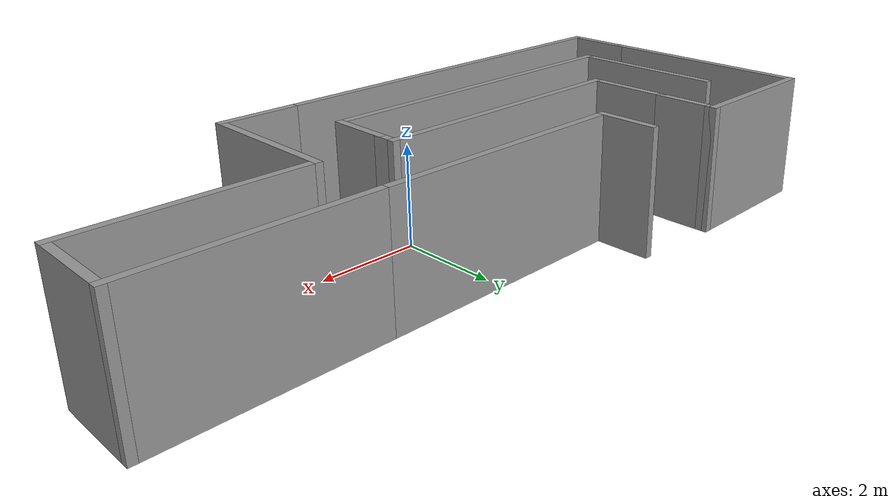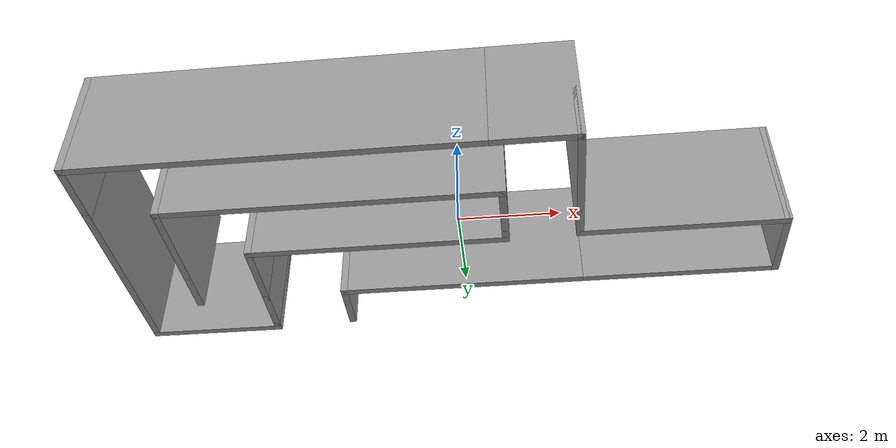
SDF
<?xml version='1.0'?>
<sdf version='1.7'>
  <model name='maze'>
    <pose>-0.39 0.71 0 0 -0 0</pose>
    <link name='Wall_10'>
      <collision name='Wall_10_Collision'>
        <geometry>
          <box>
            <size>5.5 0.15 2.5</size>
          </box>
        </geometry>
        <pose>0 0 1.25 0 -0 0</pose>
      </collision>
      <visual name='Wall_10_Visual'>
        <pose>0 0 1.25 0 -0 0</pose>
        <geometry>
          <box>
            <size>5.5 0.15 2.5</size>
          </box>
        </geometry>
        <material>
          <script>
            <uri>file://media/materials/scripts/gazebo.material</uri>
            <name>Gazebo/Grey</name>
          </script>
          <ambient>1 1 1 1</ambient>
        </material>
        <meta>
          <layer>0</layer>
        </meta>
      </visual>
      <pose>-1.375 0.05 0 0 -0 3.14159</pose>
    </link>
    <link name='Wall_11'>
      <collision name='Wall_11_Collision'>
        <geometry>
          <box>
            <size>1.75 0.15 2.5</size>
          </box>
        </geometry>
        <pose>0 0 1.25 0 -0 0</pose>
      </collision>
      <visual name='Wall_11_Visual'>
        <pose>0 0 1.25 0 -0 0</pose>
        <geometry>
          <box>
            <size>1.75 0.15 2.5</size>
          </box>
        </geometry>
        <material>
          <script>
            <uri>file://media/materials/scripts/gazebo.material</uri>
            <name>Gazebo/Grey</name>
          </script>
          <ambient>1 1 1 1</ambient>
        </material>
        <meta>
          <layer>0</layer>
        </meta>
      </visual>
      <pose>-4.05 0.85 0 0 -0 1.5708</pose>
    </link>
    <link name='Wall_13'>
      <collision name='Wall_13_Collision'>
        <geometry>
          <box>
            <size>7 0.15 2.5</size>
          </box>
        </geometry>
        <pose>0 0 1.25 0 -0 0</pose>
      </collision>
      <visual name='Wall_13_Visual'>
        <pose>0 0 1.25 0 -0 0</pose>
        <geometry>
          <box>
            <size>7 0.15 2.5</size>
          </box>
        </geometry>
        <material>
          <script>
            <uri>file://media/materials/scripts/gazebo.material</uri>
            <name>Gazebo/Grey</name>
          </script>
          <ambient>1 1 1 1</ambient>
        </material>
        <meta>
          <layer>0</layer>
        </meta>
      </visual>
      <pose>-2.125 -1.4 0 0 -0 3.14159</pose>
    </link>
    <link name='Wall_14'>
      <collision name='Wall_14_Collision'>
        <geometry>
          <box>
            <size>3.25 0.15 2.5</size>
          </box>
        </geometry>
        <pose>0 0 1.25 0 -0 0</pose>
      </collision>
      <visual name='Wall_14_Visual'>
        <pose>0 0 1.25 0 -0 0</pose>
        <geometry>
          <box>
            <size>3.25 0.15 2.5</size>
          </box>
        </geometry>
        <material>
          <script>
            <uri>file://media/materials/scripts/gazebo.material</uri>
            <name>Gazebo/Grey</name>
          </script>
          <ambient>1 1 1 1</ambient>
        </material>
        <meta>
          <layer>0</layer>
        </meta>
      </visual>
      <pose>-5.55 0.15 0 0 -0 1.5708</pose>
    </link>
    <link name='Wall_17'>
      <collision name='Wall_17_Collision'>
        <geometry>
          <box>
            <size>1.25 0.15 2.5</size>
          </box>
        </geometry>
        <pose>0 0 1.25 0 -0 0</pose>
      </collision>
      <visual name='Wall_17_Visual'>
        <pose>0 0 1.25 0 -0 0</pose>
        <geometry>
          <box>
            <size>1.25 0.15 2.5</size>
          </box>
        </geometry>
        <material>
          <script>
            <uri>file://media/materials/scripts/gazebo.material</uri>
            <name>Gazebo/Grey</name>
          </script>
          <ambient>1 1 1 1</ambient>
        </material>
        <meta>
          <layer>0</layer>
        </meta>
      </visual>
      <pose>-4.05 2.2 0 0 -0 1.5708</pose>
    </link>
    <link name='Wall_21'>
      <collision name='Wall_21_Collision'>
        <geometry>
          <box>
            <size>0.25 0.15 2.5</size>
          </box>
        </geometry>
        <pose>0 0 1.25 0 -0 0</pose>
      </collision>
      <visual name='Wall_21_Visual'>
        <pose>0 0 1.25 0 -0 0</pose>
        <geometry>
          <box>
            <size>0.25 0.15 2.5</size>
          </box>
        </geometry>
        <material>
          <script>
            <uri>file://media/materials/scripts/gazebo.material</uri>
            <name>Gazebo/Grey</name>
          </script>
          <ambient>1 1 1 1</ambient>
        </material>
        <meta>
          <layer>0</layer>
        </meta>
      </visual>
      <pose>-4.05 2.8 0 0 -0 1.5708</pose>
    </link>
    <link name='Wall_22'>
      <collision name='Wall_22_Collision'>
        <geometry>
          <box>
            <size>3 0.15 2.5</size>
          </box>
        </geometry>
        <pose>0 0 1.25 0 -0 0</pose>
      </collision>
      <visual name='Wall_22_Visual'>
        <pose>0 0 1.25 0 -0 0</pose>
        <geometry>
          <box>
            <size>3 0.15 2.5</size>
          </box>
        </geometry>
        <material>
          <script>
            <uri>file://media/materials/scripts/gazebo.material</uri>
            <name>Gazebo/Grey</name>
          </script>
          <ambient>1 1 1 1</ambient>
        </material>
        <meta>
          <layer>0</layer>
        </meta>
      </visual>
      <pose>-5.475 2.85 0 0 -0 3.14159</pose>
    </link>
    <link name='Wall_23'>
      <collision name='Wall_23_Collision'>
        <geometry>
          <box>
            <size>4.5 0.15 2.5</size>
          </box>
        </geometry>
        <pose>0 0 1.25 0 -0 0</pose>
      </collision>
      <visual name='Wall_23_Visual'>
        <pose>0 0 1.25 0 -0 0</pose>
        <geometry>
          <box>
            <size>4.5 0.15 2.5</size>
          </box>
        </geometry>
        <material>
          <script>
            <uri>file://media/materials/scripts/gazebo.material</uri>
            <name>Gazebo/Grey</name>
          </script>
          <ambient>1 1 1 1</ambient>
        </material>
        <meta>
          <layer>0</layer>
        </meta>
      </visual>
      <pose>-6.9 0.675 0 0 -0 -1.5708</pose>
    </link>
    <link name='Wall_25'>
      <collision name='Wall_25_Collision'>
        <geometry>
          <box>
            <size>1.5 0.15 2.5</size>
          </box>
        </geometry>
        <pose>0 0 1.25 0 -0 0</pose>
      </collision>
      <visual name='Wall_25_Visual'>
        <pose>0 0 1.25 0 -0 0</pose>
        <geometry>
          <box>
            <size>1.5 0.15 2.5</size>
          </box>
        </geometry>
        <material>
          <script>
            <uri>file://media/materials/scripts/gazebo.material</uri>
            <name>Gazebo/Grey</name>
          </script>
          <ambient>1 1 1 1</ambient>
        </material>
        <meta>
          <layer>0</layer>
        </meta>
      </visual>
      <pose>-6.9 -2.175 0 0 -0 -1.5708</pose>
    </link>
    <link name='Wall_26'>
      <collision name='Wall_26_Collision'>
        <geometry>
          <box>
            <size>8.25 0.15 2.5</size>
          </box>
        </geometry>
        <pose>0 0 1.25 0 -0 0</pose>
      </collision>
      <visual name='Wall_26_Visual'>
        <pose>0 0 1.25 0 -0 0</pose>
        <geometry>
          <box>
            <size>8.25 0.15 2.5</size>
          </box>
        </geometry>
        <material>
          <script>
            <uri>file://media/materials/scripts/gazebo.material</uri>
            <name>Gazebo/Grey</name>
          </script>
          <ambient>1 1 1 1</ambient>
        </material>
        <meta>
          <layer>0</layer>
        </meta>
      </visual>
      <pose>-2.85 -2.85 0 0 -0 0</pose>
    </link>
    <link name='Wall_27'>
      <collision name='Wall_27_Collision'>
        <geometry>
          <box>
            <size>1.75 0.15 2.5</size>
          </box>
        </geometry>
        <pose>0 0 1.25 0 -0 0</pose>
      </collision>
      <visual name='Wall_27_Visual'>
        <pose>0 0 1.25 0 -0 0</pose>
        <geometry>
          <box>
            <size>1.75 0.15 2.5</size>
          </box>
        </geometry>
        <material>
          <script>
            <uri>file://media/materials/scripts/gazebo.material</uri>
            <name>Gazebo/Grey</name>
          </script>
          <ambient>1 1 1 1</ambient>
        </material>
        <meta>
          <layer>0</layer>
        </meta>
      </visual>
      <pose>2 -2.85 0 0 -0 0</pose>
    </link>
    <link name='Wall_28'>
      <collision name='Wall_28_Collision'>
        <geometry>
          <box>
            <size>3 0.15 2.5</size>
          </box>
        </geometry>
        <pose>0 0 1.25 0 -0 0</pose>
      </collision>
      <visual name='Wall_28_Visual'>
        <pose>0 0 1.25 0 -0 0</pose>
        <geometry>
          <box>
            <size>3 0.15 2.5</size>
          </box>
        </geometry>
        <material>
          <script>
            <uri>file://media/materials/scripts/gazebo.material</uri>
            <name>Gazebo/Grey</name>
          </script>
          <ambient>1 1 1 1</ambient>
        </material>
        <meta>
          <layer>0</layer>
        </meta>
      </visual>
      <pose>2.8 -1.425 0 0 -0 1.5708</pose>
    </link>
    <link name='Wall_30'>
      <collision name='Wall_30_Collision'>
        <geometry>
          <box>
            <size>4.25 0.15 2.5</size>
          </box>
        </geometry>
        <pose>0 0 1.25 0 -0 0</pose>
      </collision>
      <visual name='Wall_30_Visual'>
        <pose>0 0 1.25 0 -0 0</pose>
        <geometry>
          <box>
            <size>4.25 0.15 2.5</size>
          </box>
        </geometry>
        <material>
          <script>
            <uri>file://media/materials/scripts/gazebo.material</uri>
            <name>Gazebo/Grey</name>
          </script>
          <ambient>1 1 1 1</ambient>
        </material>
        <meta>
          <layer>0</layer>
        </meta>
      </visual>
      <pose>4.85 -0 0 0 -0 0</pose>
    </link>
    <link name='Wall_31'>
      <collision name='Wall_31_Collision'>
        <geometry>
          <box>
            <size>1.75 0.15 2.5</size>
          </box>
        </geometry>
        <pose>0 0 1.25 0 -0 0</pose>
      </collision>
      <visual name='Wall_31_Visual'>
        <pose>0 0 1.25 0 -0 0</pose>
        <geometry>
          <box>
            <size>1.75 0.15 2.5</size>
          </box>
        </geometry>
        <material>
          <script>
            <uri>file://media/materials/scripts/gazebo.material</uri>
            <name>Gazebo/Grey</name>
          </script>
          <ambient>1 1 1 1</ambient>
        </material>
        <meta>
          <layer>0</layer>
        </meta>
      </visual>
      <pose>6.9 0.8 0 0 -0 1.5708</pose>
    </link>
    <link name='Wall_32'>
      <collision name='Wall_32_Collision'>
        <geometry>
          <box>
            <size>4.25 0.15 2.5</size>
          </box>
        </geometry>
        <pose>0 0 1.25 0 -0 0</pose>
      </collision>
      <visual name='Wall_32_Visual'>
        <pose>0 0 1.25 0 -0 0</pose>
        <geometry>
          <box>
            <size>4.25 0.15 2.5</size>
          </box>
        </geometry>
        <material>
          <script>
            <uri>file://media/materials/scripts/gazebo.material</uri>
            <name>Gazebo/Grey</name>
          </script>
          <ambient>1 1 1 1</ambient>
        </material>
        <meta>
          <layer>0</layer>
        </meta>
      </visual>
      <pose>4.85 1.6 0 0 -0 3.14159</pose>
    </link>
    <link name='Wall_33'>
      <collision name='Wall_33_Collision'>
        <geometry>
          <box>
            <size>5.25 0.15 2.5</size>
          </box>
        </geometry>
        <pose>0 0 1.25 0 -0 0</pose>
      </collision>
      <visual name='Wall_33_Visual'>
        <pose>0 0 1.25 0 -0 0</pose>
        <geometry>
          <box>
            <size>5.25 0.15 2.5</size>
          </box>
        </geometry>
        <material>
          <script>
            <uri>file://media/materials/scripts/gazebo.material</uri>
            <name>Gazebo/Grey</name>
          </script>
          <ambient>1 1 1 1</ambient>
        </material>
        <meta>
          <layer>0</layer>
        </meta>
      </visual>
      <pose>0.25 1.6 0 0 -0 3.14159</pose>
    </link>
    <link name='Wall_34'>
      <collision name='Wall_34_Collision'>
        <geometry>
          <box>
            <size>1.25 0.15 2.5</size>
          </box>
        </geometry>
        <pose>0 0 1.25 0 -0 0</pose>
      </collision>
      <visual name='Wall_34_Visual'>
        <pose>0 0 1.25 0 -0 0</pose>
        <geometry>
          <box>
            <size>1.25 0.15 2.5</size>
          </box>
        </geometry>
        <material>
          <script>
            <uri>file://media/materials/scripts/gazebo.material</uri>
            <name>Gazebo/Grey</name>
          </script>
          <ambient>1 1 1 1</ambient>
        </material>
        <meta>
          <layer>0</layer>
        </meta>
      </visual>
      <pose>-2.3 2.15 0 0 -0 1.5708</pose>
    </link>
    <link name='Wall_7'>
      <collision name='Wall_7_Collision'>
        <geometry>
          <box>
            <size>1.25 0.15 2.5</size>
          </box>
        </geometry>
        <pose>0 0 1.25 0 -0 0</pose>
      </collision>
      <visual name='Wall_7_Visual'>
        <pose>0 0 1.25 0 -0 0</pose>
        <geometry>
          <box>
            <size>1.25 0.15 2.5</size>
          </box>
        </geometry>
        <material>
          <script>
            <uri>file://media/materials/scripts/gazebo.material</uri>
            <name>Gazebo/Grey</name>
          </script>
          <ambient>1 1 1 1</ambient>
        </material>
        <meta>
          <layer>0</layer>
        </meta>
      </visual>
      <pose>1.3 -0.85 0 0 -0 1.5708</pose>
    </link>
    <link name='Wall_9'>
      <collision name='Wall_9_Collision'>
        <geometry>
          <box>
            <size>0.5 0.15 2.5</size>
          </box>
        </geometry>
        <pose>0 0 1.25 0 -0 0</pose>
      </collision>
      <visual name='Wall_9_Visual'>
        <pose>0 0 1.25 0 -0 0</pose>
        <geometry>
          <box>
            <size>0.5 0.15 2.5</size>
          </box>
        </geometry>
        <material>
          <script>
            <uri>file://media/materials/scripts/gazebo.material</uri>
            <name>Gazebo/Grey</name>
          </script>
          <ambient>1 1 1 1</ambient>
        </material>
        <meta>
          <layer>0</layer>
        </meta>
      </visual>
      <pose>1.3 -0.125 0 0 -0 1.5708</pose>
    </link>
    <static>1</static>
  </model>
</sdf>
